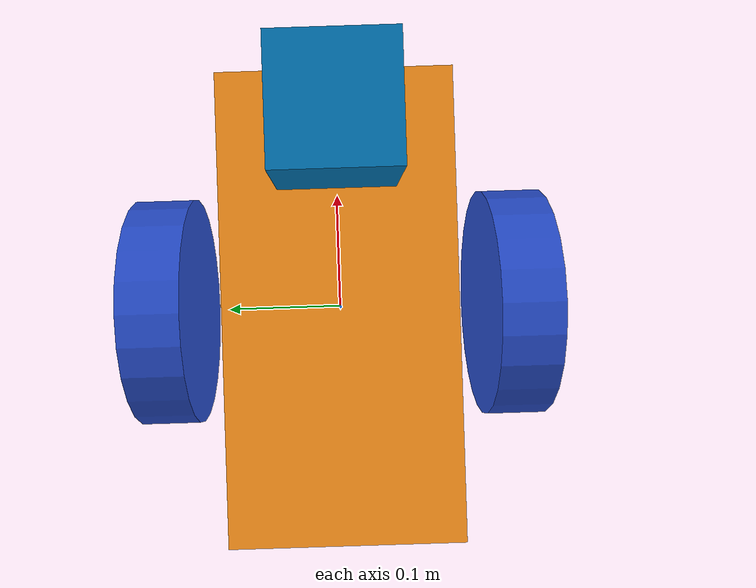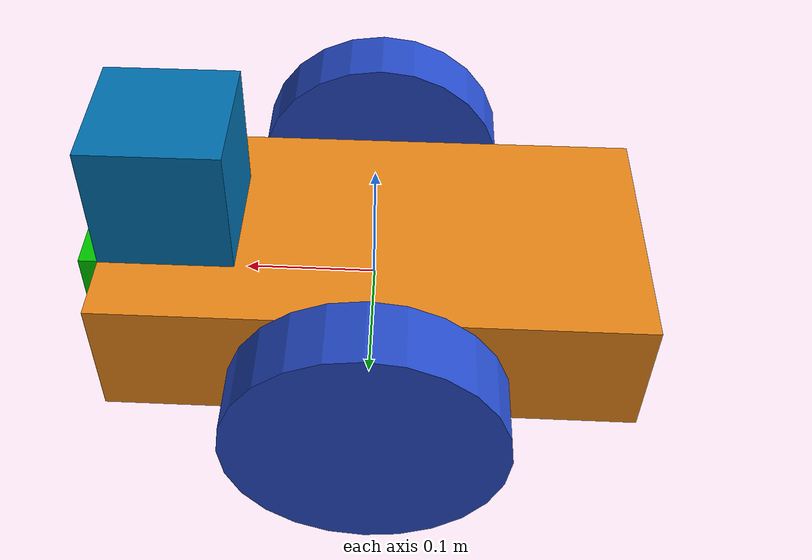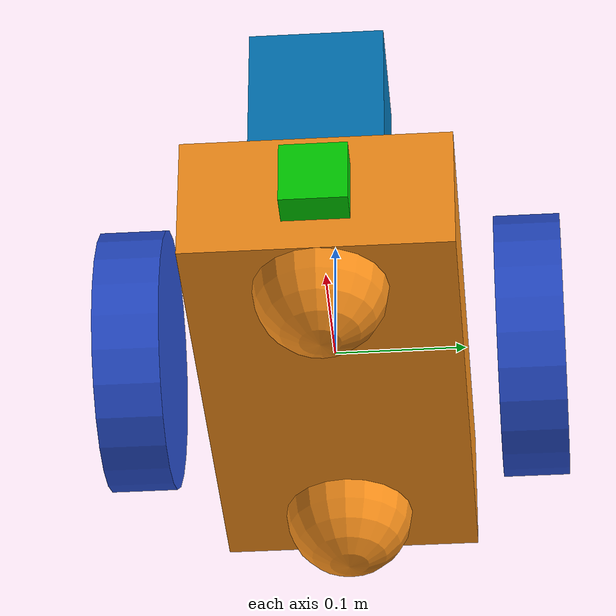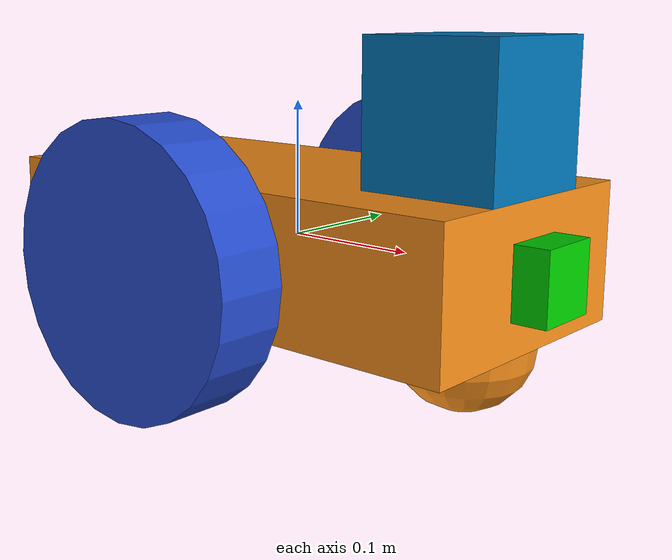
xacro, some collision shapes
<?xml version='1.0'?>
<robot name="myrobot" xmlns:xacro="http://www.ros.org/wiki/xacro">
<xacro:property name="cameraSize" value="0.05"/>
<xacro:property name="cameraMass" value="0.1"/>
<xacro:include filename="$(find mybot_description)/urdf/mybot.gazebo" />
<xacro:include filename="$(find mybot_description)/urdf/materials.xacro" />
<xacro:include filename="$(find mybot_description)/urdf/macros.xacro" />
<link name='chassis'>
<pose>0 0 0.1 0 0 0</pose>
<inertial>
<mass value="15.0"/>
<origin xyz="0.0 0 0.1" rpy=" 0 0 0"/>
<inertia ixx="0.1" ixy="0" ixz="0" iyy="0.1" iyz="0" izz="0.1"/>
</inertial>
<collision name='collision'>
<geometry>
<box size=".4 .2 .1"/>
</geometry>
</collision>
<visual name='chassis_visual'>
<origin xyz="0 0 0" rpy=" 0 0 0"/>
<geometry><box size=".4 .2 .1"/>
</geometry></visual><collision name='caster_collision'>
<origin xyz="-0.15 0 -0.05" rpy=" 0 0 0"/>
<geometry>
<sphere radius="0.05"/>
</geometry>
<surface>
<friction>
<ode>
<mu>0</mu>
<mu2>0</mu2>
<slip1>1.0</slip1>
<slip2>1.0</slip2>
</ode>
</friction>
</surface>
</collision>
<visual name='caster_visual'>
<origin xyz="-0.15 0 -0.05" rpy=" 0 0 0"/>
<geometry>
<sphere radius="0.05"/>
</geometry>
</visual>
<collision name='caster_front_collision'>
<origin xyz="0.15 0 -0.05" rpy=" 0 0 0"/>
<geometry>
<sphere radius="0.05"/>
</geometry>
<surface>
<friction>
<ode>
<mu>0</mu>
<mu2>0</mu2>
<slip1>1.0</slip1>
<slip2>1.0</slip2>
</ode>
</friction>
</surface>
</collision>
<visual name='caster_front_visual'>
<origin xyz="0.15 0 -0.05" rpy=" 0 0 0"/>
<geometry>
<sphere radius="0.05"/>
</geometry>
</visual>
</link>
<link name="left_wheel">
<!--origin xyz="0.1 0.13 0.1" rpy="0 1.5707 1.5707"/-->
<collision name="collision">
<origin xyz="0 0 0" rpy="0 1.5707 1.5707"/>
<geometry>
<cylinder radius="0.1" length="0.05"/>
</geometry>
</collision>
<visual name="left_wheel_visual">
<origin xyz="0 0 0" rpy="0 1.5707 1.5707"/>
<geometry>
<cylinder radius="0.1" length="0.05"/>
</geometry>
</visual>
<inertial>
<origin xyz="0 0 0" rpy="0 1.5707 1.5707"/>
<mass value="5"/>
<inertia ixx=".1" ixy="0.0" ixz="0.0" iyy=".1" iyz="0.0" izz=".1"/>
</inertial>
</link>
<link name="right_wheel">
<!--origin xyz="0.1 -0.13 0.1" rpy="0 1.5707 1.5707"/-->
<collision name="collision"><origin xyz="0 0 0" rpy="0 1.5707 1.5707"/>
<geometry>
<cylinder radius="0.1" length="0.05"/>
</geometry>
</collision><visual name="right_wheel_visual">
<origin xyz="0 0 0" rpy="0 1.5707 1.5707"/>
<geometry>
<cylinder radius="0.1" length="0.05"/>
</geometry>
</visual>
<inertial>
<origin xyz="0 0 0" rpy="0 1.5707 1.5707"/>
<mass value="5"/>
<inertia  ixx=".1" ixy="0.0" ixz="0.0" iyy=".1" iyz="0.0" izz=".1"/>
</inertial>
</link>
<joint type="continuous" name="left_wheel_hinge">
<origin xyz="0 0.15 0" rpy="0 0 0"/>
<!--origin xyz="0.1 0.13 0" rpy="0 1.5707 1.5707"/-->
<child link="left_wheel"/>
<parent link="chassis"/>
<axis xyz="0 1 0" rpy="0 0 0"/>
<limit effort="10000" velocity="1000"/>
<joint_properties damping="1.0" friction="1.0"/>
</joint>
<joint type="continuous" name="right_wheel_hinge">
<origin xyz="0 -0.15 0" rpy="0 0 0"/>
<!--origin xyz="0.1 -0.13 0" rpy="0 1.5707 1.5707"/-->
<child link="right_wheel"/>
<parent link="chassis"/>
<axis xyz="0 1 0" rpy="0 0 0"/>
<limit effort="10000" velocity="1000"/>
<joint_properties damping="1.0" friction="1.0"/>
</joint>
<link name="camera">
<collision>
<origin xyz="0 0 0" rpy="0 0 0"/>
<geometry>
<box size="${cameraSize} ${cameraSize} ${cameraSize}"/>
</geometry>
</collision>
<visual>
<origin xyz="0 0 0" rpy="0 0 0"/>
<geometry>
<box size="${cameraSize} ${cameraSize} ${cameraSize}"/>
</geometry>
<material name="green"/>
</visual>
<inertial>
<mass value="${cameraMass}" />
<origin xyz="0 0 0" rpy="0 0 0"/>
<box_inertia m="${cameraMass}" x="${cameraSize}" y="${cameraSize}" z="${cameraSize}" />
<inertia ixx="1e-6" ixy="0" ixz="0" iyy="1e-6" iyz="0" izz="1e-6" /></inertial>
</link>
<joint name="camera_joint" type="fixed"><axis xyz="0 1 0" /><origin xyz=".2 0 0" rpy="0 0 0"/>
<parent link="chassis"/>
<child link="camera"/>
</joint>
<joint name="hokuyo_joint" type="fixed">
<axis xyz="0 1 0" />
<origin xyz=".15 0 .1" rpy="0 0 0"/>
<parent link="chassis"/>
<child link="hokuyo"/>
</joint>

<link name="hokuyo">
<collision>
<origin xyz="0 0 0" rpy="0 0 0"/>
<geometry>
<box size="0.1 0.1 0.1"/>
</geometry>
</collision>
<visual>
<origin xyz="0 0 0" rpy="0 0 0"/>
<geometry>
<mesh filename="package://mybot_description/meshes/hokuyo.dae"/>
</geometry>
</visual>
<inertial>
<mass value="1e-5" />
<origin xyz="0 0 0" rpy="0 0 0"/>
<inertia ixx="1e-6" ixy="0" ixz="0" iyy="1e-6" iyz="0" izz="1e-6" />
</inertial>
</link>

<!--IMU-->
<joint name="imu_joint" type="fixed">
<axis xyz="0 0 1" />
<origin xyz="0 0 0" rpy="0 0 0 "/>
<parent link="chassis"/>
<child link="imu_link"/>
</joint>

<link name="imu_link">
<collision>
<origin xyz="0 0 0" rpy="0 0 0"/>
<geometry>
<box size="0.02 0.02 0.02"/>
</geometry>
</collision>
<visual>
<origin xyz="0 0 0" rpy="0 0 0"/>
<geometry>
<box size="0.02 0.02 0.02"/>
</geometry>
<!--material name="iRobot/Red"/-->
</visual>
<inertial>
<mass value="0.001" />
<origin xyz="0 0 0" rpy="0 0 0"/>
<inertia ixx="0.00000015" ixy="0" ixz="0" iyy="0.00000015" iyz="0" izz="0.00000015" />
</inertial>
</link>

<!--gps-->
<joint name="gps_joint" type="fixed">
<axis xyz="0 0 1" />
<origin xyz="0 0 0" rpy="0 0 0 "/>
<parent link="chassis"/>
<child link="gps_link"/>
</joint>
<link name="gps_link">
<collision>
<origin xyz="0 0 0" rpy="0 0 0"/>
<geometry>
<box size="0.03 0.03 0.03"/>
</geometry>
</collision>
<visual>
<origin xyz="0 0 0" rpy="0 0 0"/>
<geometry>
<box size="0.03 0.03 0.03"/>
</geometry>
<!--material name="iRobot/Red"/-->
</visual>
<inertial>
<mass value="0.001" />
<origin xyz="0 0 0" rpy="0 0 0"/>
<inertia ixx="0.00000015" ixy="0" ixz="0" iyy="0.00000015" iyz="0" izz="0.00000015" />
</inertial>
</link>

</robot>

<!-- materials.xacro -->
<robot>
<material name="black"><color rgba="0.0 0.0 0.0 1.0"/></material>
<material name="blue"><color rgba="0.0 0.0 0.8 1.0"/></material>
<material name="green"><color rgba="0.0 0.8 0.0 1.0"/></material>
<material name="grey"><color rgba="0.2 0.2 0.2 1.0"/></material>
<material name="orange"><color rgba="${255/255} ${108/255} ${10/255} 1.0"/></material>
<material name="brown"><color rgba="${222/255} ${207/255} ${195/255} 1.0"/></material>
<material name="red"><color rgba="0.8 0.0 0.0 1.0"/></material>
<material name="white"><color rgba="1.0 1.0 1.0 1.0"/></material>
</robot>
